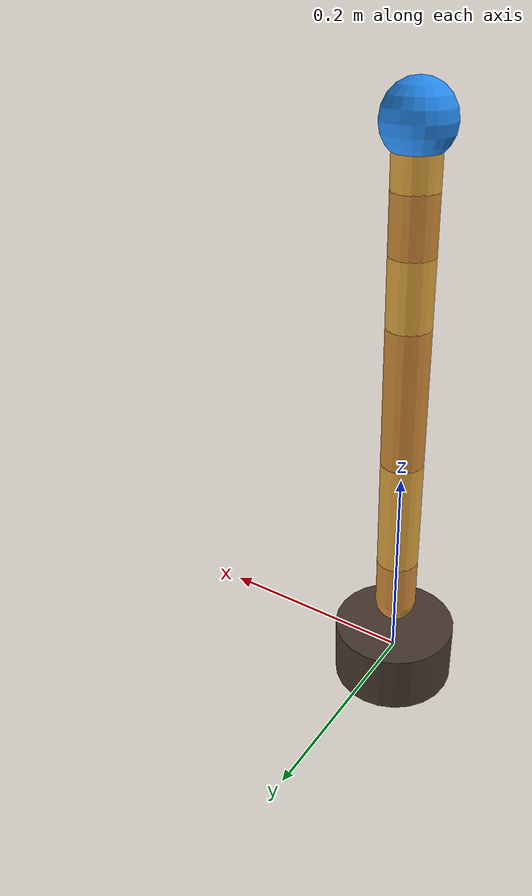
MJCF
<mujoco model="plcopen_sa3_six_link">
  <compiler angle="radian"/>
  <option timestep="0.001" integrator="implicitfast"/>
  <default>
    <joint type="hinge" limited="true" range="-1.9 1.9" damping="1" armature="0.01"/>
    <geom type="capsule" size="0.02" density="600" rgba="0.82 0.55 0.22 1"/>
    <position kp="80" ctrllimited="true" ctrlrange="-1.9 1.9"/>
  </default>
  <worldbody>
    <body name="base">
      <geom type="cylinder" size="0.06 0.03" rgba="0.28 0.22 0.18 1"/>
      <body name="link1" pos="0 0 0.06">
        <joint name="joint1" axis="0 0 1"/>
        <geom fromto="0 0 0 0 0 0.05"/>
        <body name="link2" pos="0 0 0.05">
          <joint name="joint2" axis="0 1 0"/>
          <geom fromto="0 0 0 0 0 0.11" rgba="0.88 0.65 0.25 1"/>
          <body name="link3" pos="0 0 0.11">
            <joint name="joint3" axis="0 1 0"/>
            <geom fromto="0 0 0 0 0 0.13"/>
            <body name="link4" pos="0 0 0.13">
              <joint name="joint4" axis="0 1 0"/>
              <geom fromto="0 0 0 0 0 0.06" rgba="0.88 0.65 0.25 1"/>
              <body name="link5" pos="0 0 0.06">
                <joint name="joint5" axis="0 0 1"/>
                <geom fromto="0 0 0 0 0 0.05"/>
                <body name="link6" pos="0 0 0.05">
                  <joint name="joint6" axis="1 0 0"/>
                  <geom fromto="0 0 0 0 0 0.05" rgba="0.88 0.65 0.25 1"/>
                  <site name="tool" pos="0 0 0.05" size="0.03"
                        rgba="0.15 0.55 0.95 1"/>
                </body>
              </body>
            </body>
          </body>
        </body>
      </body>
    </body>
  </worldbody>
  <actuator>
    <position name="actuator1" joint="joint1"/>
    <position name="actuator2" joint="joint2"/>
    <position name="actuator3" joint="joint3"/>
    <position name="actuator4" joint="joint4"/>
    <position name="actuator5" joint="joint5"/>
    <position name="actuator6" joint="joint6"/>
  </actuator>
</mujoco>
